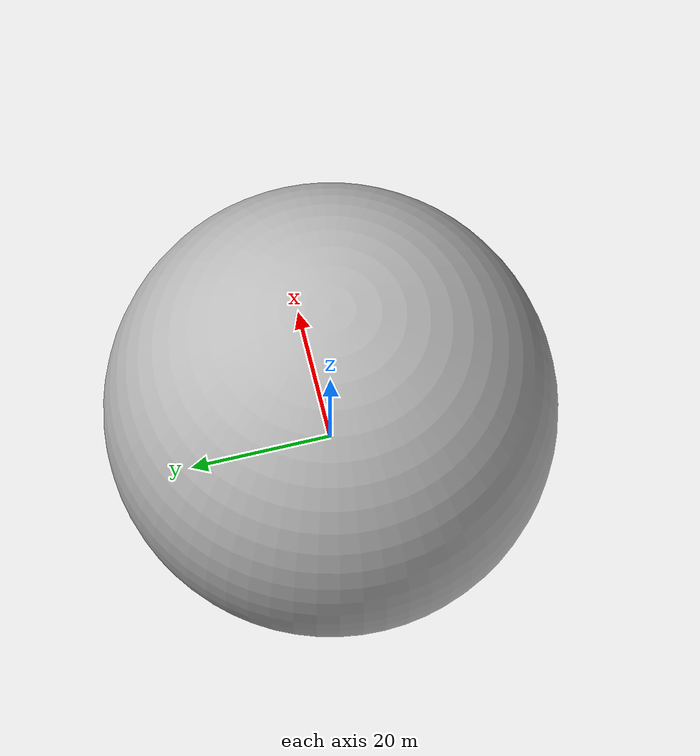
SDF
<?xml version='1.0' encoding='ASCII'?>
<sdf version='1.7'>
  <!-- We use a custom world for the robot so that the camera angle is launched correctly -->

  <world name="default">

    <!-- Global light source -->

    <scene>
    <grid>false</grid>
    </scene>

    <include>
      <uri>model://ground_plane_grass</uri>
       <pose>0.0 0.0 -0.131218 0 0 0</pose>
    </include>

    <include>
      <uri>model://landscape_sky</uri>
       <pose>0.0 0.0 10.0 0 0 0</pose>
    </include>

    <include>
      <uri>model://plant_flower</uri>
       <pose>0 -5 -0.120157 0 0 0</pose>
       <name>plant_flower_1</name>
    </include>
    <include>
      <uri>model://plant_flower</uri>
       <pose>0.1 -5.2 -0.120157 0 0 0</pose>
       <name>plant_flower_2</name>
    </include>
    <include>
      <uri>model://plant_flower</uri>
       <pose>-0.2 -5.4 -0.120157 0 0 0</pose>
       <name>plant_flower_3</name>
    </include>

    <include>
      <uri>model://crate</uri>
       <pose>-1.367156 2.713346 -0.1 0 0.0 0</pose>
    </include>

    <include>
      <uri>model://crate_waste</uri>
       <pose>-6.021646 3.072642 -0.1 0 0.0 -0.087768</pose>
    </include>

    <include>
      <uri>model://rock</uri>
       <pose>1.367156 -2.713346 -0.1 0 0.0 0</pose>
    </include>

    <light name='user_point_light_1' type='point'>
      <pose>0.0 -8.0 25.0 0 -0 0</pose>
      <diffuse>0.5 0.5 0.5 1</diffuse>
      <specular>0.1 0.1 0.1 1</specular>
      <attenuation>
        <range>200</range>
        <constant>0.0</constant>
        <linear>0.0</linear>
        <quadratic>0.0005</quadratic>
      </attenuation>
      <cast_shadows>0</cast_shadows>
      <direction>0 0 -1</direction>
    </light>

    <plugin filename="gz-sim-sensors-system" name="gz::sim::systems::Sensors"></plugin>
    <plugin filename="gz-sim-physics-system" name="gz::sim::systems::Physics"></plugin>
    <plugin filename="gz-sim-user-commands-system" name="gz::sim::systems::UserCommands"></plugin>
    <plugin filename="gz-sim-scene-broadcaster-system" name="gz::sim::systems::SceneBroadcaster"></plugin>
    <plugin filename="gz-sim-imu-system" name="gz::sim::systems::Imu"></plugin>

  </world>
</sdf>

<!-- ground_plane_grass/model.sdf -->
<sdf version="1.5">
  <model name="ground_plane_grass">
    <static>true</static>
    <link name="link">

        <visual name='visual'>
            <pose frame=''>0 0 0 0 0 0</pose>
            <geometry>
            <mesh>
                <uri>model://ground_plane_grass/meshes/grass_plane.dae</uri>
                <scale>10.0 10.0 10.0</scale>
            </mesh>
            </geometry>
            <cast_shadows>0</cast_shadows>
            <transparency>0</transparency>
        </visual>

      <collision name="collision">
        <geometry>
          <plane>
            <normal>0 0 1</normal>
            <size>100 100</size>
          </plane>
        </geometry>
        <surface>
          <friction>
            <ode>
              <mu>100</mu>
              <mu2>50</mu2>
            </ode>
          </friction>
        </surface>
      </collision>

    </link>
  </model>
</sdf>

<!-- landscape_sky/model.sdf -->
<sdf version='1.6'>
  <model name='landscape_sky'>
    <link name='link_1'>
         <visual name='visual'>
        <pose frame=''>0 0 0 0 -0 0</pose>
        <geometry>
          <mesh>
            <uri>model://landscape_sky/meshes/anime_sky.dae</uri>
            <scale>0.2 0.2 0.2</scale>
          </mesh>
        </geometry>
        <cast_shadows>0</cast_shadows>
        <transparency>0</transparency>
      </visual>
    </link>

    <static>1</static>
    <allow_auto_disable>1</allow_auto_disable>
  </model>
</sdf>

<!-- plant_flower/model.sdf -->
<sdf version='1.4'>
  <model name="plant_flower">
      <static>1</static>
        <link name='link_1'>
            <visual name='visual'>
            <pose frame=''>0 0 0 0 0 0</pose>
            <geometry>
            <mesh>
                <uri>model://plant_flower/meshes/plant_flower.dae</uri>
                <scale>0.1 0.1 0.1</scale>
            </mesh>
            </geometry>
            <cast_shadows>0</cast_shadows>
            <transparency>0</transparency>
        </visual>

        <collision name='collision'>
            <laser_retro>0</laser_retro>
            <pose frame=''>0 0 0 0 0 0</pose>
            <geometry>
            <mesh>
                <uri>model://plant_flower/meshes/plant_flower.stl</uri>
                <scale>0.1 0.1 0.1</scale>
            </mesh>
            </geometry>
        </collision>
        </link>
  </model>
</sdf>

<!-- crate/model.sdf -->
<sdf version='1.4'>
  <model name="crate">
      <static>1</static>
        <link name='link_1'>
            <visual name='visual'>
            <pose frame=''>0 0 0 0 0 0</pose>
            <geometry>
            <mesh>
                <uri>model://crate/meshes/crate.dae</uri>
                <scale>2.0 2.0 2.0</scale>
            </mesh>
            </geometry>
            <cast_shadows>0</cast_shadows>
            <transparency>0</transparency>
        </visual>

        <collision name='collision'>
            <laser_retro>0</laser_retro>
            <pose frame=''>0 0 0 0 0 0</pose>
            <geometry>
            <mesh>
                <uri>model://crate/meshes/crate.stl</uri>
                <scale>2.0 2.0 2.0</scale>
            </mesh>
            </geometry>
        </collision>
        </link>
  </model>
</sdf>

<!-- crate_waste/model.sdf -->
<sdf version='1.4'>
  <model name="crate_waste">
      <static>1</static>
        <link name='link_1'>
            <visual name='visual'>
            <pose frame=''>0 0 0 0 0 0</pose>
            <geometry>
            <mesh>
                <uri>model://crate_waste/meshes/crate.dae</uri>
                <scale>2.0 2.0 2.0</scale>
            </mesh>
            </geometry>
            <cast_shadows>0</cast_shadows>
            <transparency>0</transparency>
        </visual>

        <collision name='collision'>
            <laser_retro>0</laser_retro>
            <pose frame=''>0 0 0 0 0 0</pose>
            <geometry>
            <mesh>
                <uri>model://crate_waste/meshes/crate.stl</uri>
                <scale>2.0 2.0 2.0</scale>
            </mesh>
            </geometry>
        </collision>
        </link>
  </model>
</sdf>

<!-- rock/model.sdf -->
<sdf version='1.4'>
  <model name="rock">
      <static>1</static>
        <link name='link_1'>
            <visual name='visual'>
            <pose frame=''>0 0 0 0 0 0</pose>
            <geometry>
            <mesh>
                <uri>model://rock/meshes/rock.dae</uri>
                <scale>1.0 1.0 1.0</scale>
            </mesh>
            </geometry>
            <cast_shadows>0</cast_shadows>
            <transparency>0</transparency>
        </visual>

        <collision name='collision'>
            <laser_retro>0</laser_retro>
            <pose frame=''>0 0 0 0 0 0</pose>
            <geometry>
            <mesh>
                <uri>model://rock/meshes/rock.dae</uri>
                <scale>1.0 1.0 1.0</scale>
            </mesh>
            </geometry>
        </collision>
        </link>
  </model>
</sdf>
